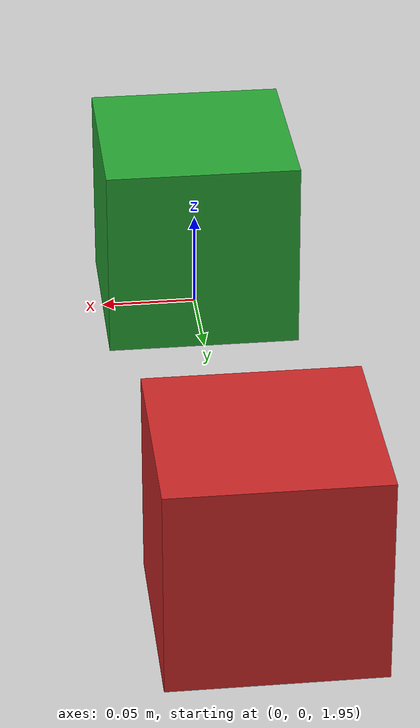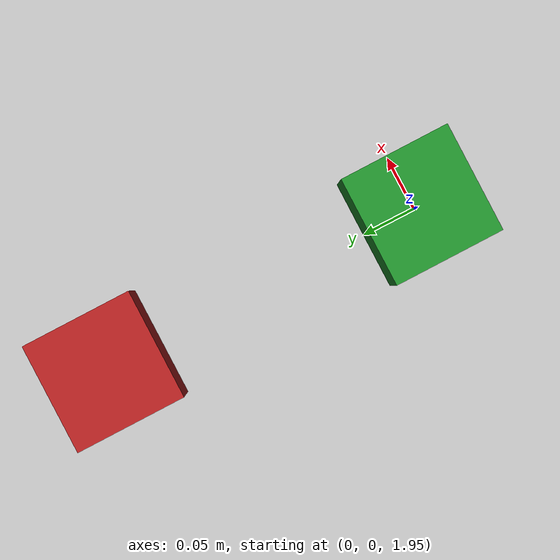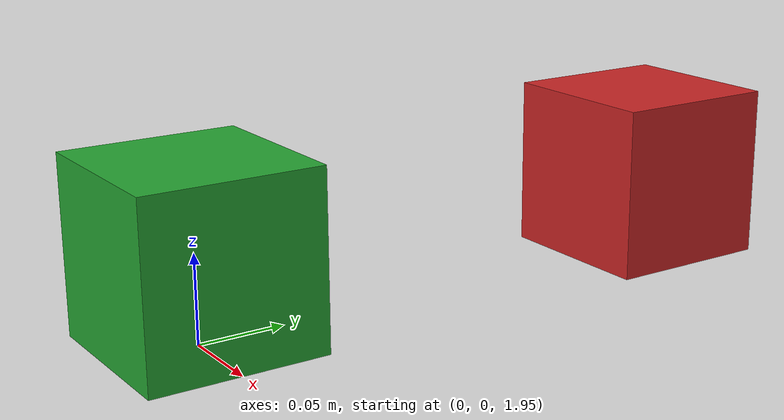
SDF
<?xml version="1.0" ?>
<sdf version="1.5">
  <world name="default">
    <!-- A global light source -->
    <include>
      <uri>model://sun</uri>
    </include>
    <!-- A ground plane -->
    <include>
      <uri>model://ground_plane</uri>
    </include>
    <!-- Box 100x100x100 -->
    <include>
      <uri>model://box100</uri>
      <pose>0 0.0 2.0 0 0 0</pose>
    </include>
    <!-- Box 100x100x100 -->
    <include>
      <name>box100_2</name>
      <uri>model://red_box100</uri>
      <pose>0 0.3 2.0 0 0 0</pose>
    </include>
    <physics type = "ode">
        <max_step_size>0.001</max_step_size>
        <real_time_factor>1</real_time_factor>
        <real_time_update_rate>1000</real_time_update_rate>
    </physics>
  </world>
</sdf>

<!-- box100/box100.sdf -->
<sdf version="1.5">
  <model name="box100">
    <link name="link">
      <pose>0 0 0.0 0 0 0</pose>
      <inertial>
        <mass>1.0</mass>
        <inertia>
          <ixx>0.27</ixx>
          <ixy>0</ixy>
          <ixz>0</ixz>
          <iyy>0.27</iyy>
          <iyz>0</iyz>
          <izz>0.27</izz>
        </inertia>
      </inertial>
      <self_collide>0</self_collide>
      <kinematic>0</kinematic>
      <gravity>0</gravity>

      <collision name="collision">
        <geometry>
          <box>
            <size>0.1 0.1 0.1</size>
          </box>
        </geometry>
        <surface>
          <contact>
            <collide_without_contact>1</collide_without_contact>
          </contact>
        </surface>
      </collision>

      <visual name="visual">
        <geometry>
          <box>
            <size>0.1 0.1 0.1</size>
          </box>
        </geometry>
        <material>
          <script>
            <uri>file://media/materials/scripts/gazebo.material</uri>
            <name>Gazebo/Green</name>
          </script>
        </material>
      </visual>

    </link>
  </model>
</sdf>

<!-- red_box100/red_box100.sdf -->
<sdf version="1.5">
  <model name="box100">
    <link name="link">
      <pose>0 0 0.0 0 0 0</pose>
      <inertial>
        <mass>1.0</mass>
        <inertia>
          <ixx>0.27</ixx>
          <ixy>0</ixy>
          <ixz>0</ixz>
          <iyy>0.27</iyy>
          <iyz>0</iyz>
          <izz>0.27</izz>
        </inertia>
      </inertial>
      <self_collide>0</self_collide>
      <kinematic>0</kinematic>
      <gravity>0</gravity>

      <collision name="collision">
        <geometry>
          <box>
            <size>0.1 0.1 0.1</size>
          </box>
        </geometry>
        <surface>
          <contact>
            <collide_without_contact>1</collide_without_contact>
          </contact>
        </surface>
      </collision>

      <visual name="visual">
        <geometry>
          <box>
            <size>0.1 0.1 0.1</size>
          </box>
        </geometry>
        <material>
          <script>
            <uri>file://media/materials/scripts/gazebo.material</uri>
            <name>Gazebo/Red</name>
          </script>
        </material>
      </visual>

    </link>
  </model>
</sdf>
